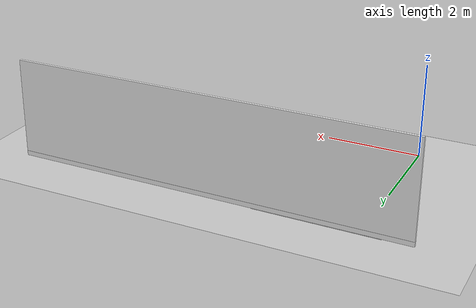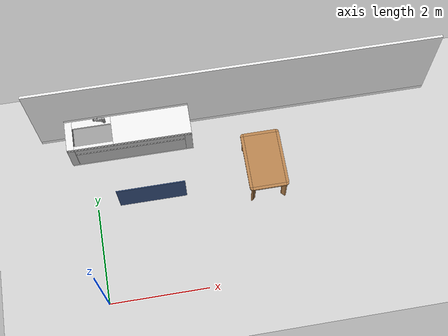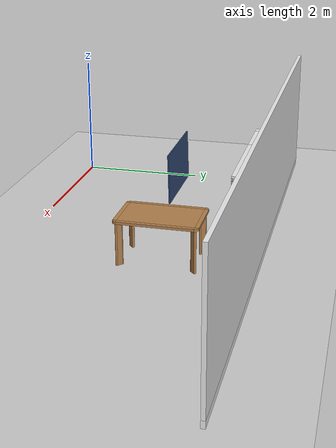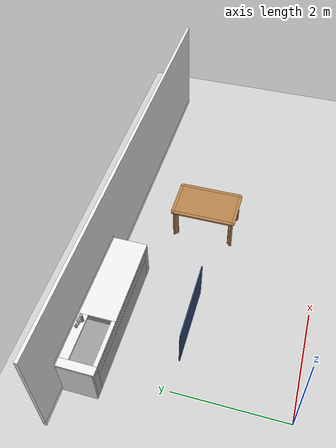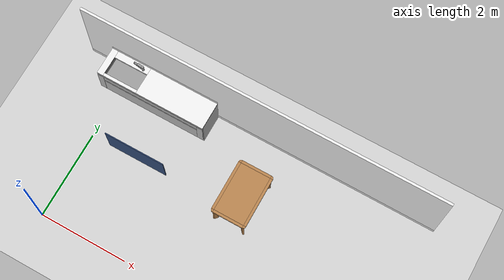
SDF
<sdf version="1.6">
 <world name="default">
  <model name="ground_plane">
   <static>1</static>
   <link name="link">
    <collision name="collision">
     <geometry><plane><normal>0 0 1</normal><size>100 100</size></plane></geometry>
     <surface><friction><ode><mu>100</mu><mu2>50</mu2></ode></friction></surface>
    </collision>
    <visual name="visual">
     <cast_shadows>0</cast_shadows>
     <geometry><plane><normal>0 0 1</normal><size>100 100</size></plane></geometry>
     <material>
      <script><uri>file://media/materials/scripts/gazebo.material</uri><name>Gazebo/Grey</name></script>
     </material>
    </visual>
   </link>
  </model>
  <model name="full_wall_55_8295_2090_0">
   <link name="link">
    <inertial>
     <mass>50</mass>
     <inertia><ixx>1</ixx><ixy>0</ixy><ixz>0</ixz><iyy>1</iyy><iyz>0</iyz><izz>1</izz></inertia>
    </inertial>
    <visual name="bottom_frame">
     <pose>0 0 0.05 0 -0 0</pose>
     <geometry><box><size>0.055 8.295 0.1</size></box></geometry>
     <material>
      <script><uri>model://base_materials/color/scripts</uri><name>hsr_color/white</name></script>
     </material>
    </visual>
    <collision name="collision_bottom_frame">
     <pose>0 0 0.05 0 -0 0</pose>
     <geometry><box><size>0.055 8.295 0.1</size></box></geometry>
    </collision>
    <visual name="wall">
     <pose>0 0 1.095 0 -0 0</pose>
     <geometry><box><size>0.055 8.295 1.99</size></box></geometry>
     <material>
      <script>
       <uri>model://base_materials/wall/scripts</uri>
       <uri>model://base_materials/wall/textures</uri>
       <name>wall/white_noise</name>
      </script>
     </material>
    </visual>
    <collision name="collision_wall">
     <pose>0 0 1.095 0 -0 0</pose>
     <geometry><box><size>0.055 8.295 1.99</size></box></geometry>
    </collision>
    <velocity_decay><linear>0</linear><angular>0</angular></velocity_decay>
   </link>
   <static>1</static>
   <pose>3.12113 3.69468 0.03334 0 0 -1.57394</pose>
  </model>
  <model name="kitchen_table_0">
   <link name="link">
    <inertial>
     <mass>10</mass>
     <inertia><ixx>1</ixx><ixy>0</ixy><ixz>0</ixz><iyy>1</iyy><iyz>0</iyz><izz>1</izz></inertia>
    </inertial>
    <visual name="center_board">
     <pose>0 0 0.68 0 -0 0</pose>
     <geometry><box><size>0.68 1.13 0.04</size></box></geometry>
     <material>
      <script><uri>model://base_materials/wood/scripts/wood.material</uri><name>base_materials/wood</name></script>
     </material>
    </visual>
    <collision name="collision_center_board">
     <pose>0 0 0.68 0 -0 0</pose>
     <geometry><box><size>0.68 1.13 0.04</size></box></geometry>
    </collision>
    <visual name="front_board">
     <pose>0.37 0 0.68 0 -0 0</pose>
     <geometry><box><size>0.06 1.13 0.04</size></box></geometry>
     <material>
      <script><uri>model://base_materials/wood/scripts/wood.material</uri><name>base_materials/wood</name></script>
     </material>
    </visual>
    <collision name="collision_front_board">
     <pose>0.37 0 0.68 0 -0 0</pose>
     <geometry><box><size>0.06 1.13 0.04</size></box></geometry>
    </collision>
    <visual name="back_board">
     <pose>-0.37 0 0.68 0 -0 0</pose>
     <geometry><box><size>0.06 1.13 0.04</size></box></geometry>
     <material>
      <script><uri>model://base_materials/wood/scripts/wood.material</uri><name>base_materials/wood</name></script>
     </material>
    </visual>
    <collision name="collision_back_board">
     <pose>-0.37 0 0.68 0 -0 0</pose>
     <geometry><box><size>0.06 1.13 0.04</size></box></geometry>
    </collision>
    <visual name="right_board">
     <pose>0 0.595 0.68 0 -0 0</pose>
     <geometry><box><size>0.68 0.06 0.04</size></box></geometry>
     <material>
      <script><uri>model://base_materials/wood/scripts/wood.material</uri><name>base_materials/wood</name></script>
     </material>
    </visual>
    <collision name="collision_right_board">
     <pose>0 0.595 0.68 0 -0 0</pose>
     <geometry><box><size>0.68 0.06 0.04</size></box></geometry>
    </collision>
    <visual name="left_board">
     <pose>0 -0.595 0.68 0 -0 0</pose>
     <geometry><box><size>0.68 0.06 0.04</size></box></geometry>
     <material>
      <script><uri>model://base_materials/wood/scripts/wood.material</uri><name>base_materials/wood</name></script>
     </material>
    </visual>
    <collision name="collision_left_board">
     <pose>0 -0.595 0.68 0 -0 0</pose>
     <geometry><box><size>0.68 0.06 0.04</size></box></geometry>
    </collision>
    <visual name="front_right_corner_board">
     <pose>0.34 0.565 0.68 0 -0 0</pose>
     <geometry><cylinder><radius>0.06</radius><length>0.039</length></cylinder></geometry>
     <material>
      <script><uri>model://base_materials/wood/scripts/wood.material</uri><name>base_materials/wood</name></script>
     </material>
    </visual>
    <collision name="collision_front_right_corner_board">
     <pose>0.34 0.565 0.68 0 -0 0</pose>
     <geometry><cylinder><radius>0.06</radius><length>0.039</length></cylinder></geometry>
    </collision>
    <visual name="front_left_corner_board">
     <pose>0.34 -0.565 0.68 0 -0 0</pose>
     <geometry><cylinder><radius>0.06</radius><length>0.039</length></cylinder></geometry>
     <material>
      <script><uri>model://base_materials/wood/scripts/wood.material</uri><name>base_materials/wood</name></script>
     </material>
    </visual>
    <collision name="collision_front_left_corner_board">
     <pose>0.34 -0.565 0.68 0 -0 0</pose>
     <geometry><cylinder><radius>0.06</radius><length>0.039</length></cylinder></geometry>
    </collision>
    <visual name="front_back_right_corner_board">
     <pose>-0.34 0.565 0.68 0 -0 0</pose>
     <geometry><cylinder><radius>0.06</radius><length>0.039</length></cylinder></geometry>
     <material>
      <script><uri>model://base_materials/wood/scripts/wood.material</uri><name>base_materials/wood</name></script>
     </material>
    </visual>
    <collision name="collision_back_right_corner_board">
     <pose>-0.34 0.565 0.68 0 -0 0</pose>
     <geometry><cylinder><radius>0.06</radius><length>0.039</length></cylinder></geometry>
    </collision>
    <visual name="front_back_left_corner_board">
     <pose>-0.34 -0.565 0.68 0 -0 0</pose>
     <geometry><cylinder><radius>0.06</radius><length>0.039</length></cylinder></geometry>
     <material>
      <script><uri>model://base_materials/wood/scripts/wood.material</uri><name>base_materials/wood</name></script>
     </material>
    </visual>
    <collision name="collision_back_left_corner_board">
     <pose>-0.34 -0.565 0.68 0 -0 0</pose>
     <geometry><cylinder><radius>0.06</radius><length>0.039</length></cylinder></geometry>
    </collision>
    <visual name="front_left_corner_frame1">
     <pose>0.345858 -0.57086 0.33 0 -0 0</pose>
     <geometry><cylinder><radius>0.02</radius><length>0.66</length></cylinder></geometry>
     <material>
      <script><uri>model://base_materials/wood/scripts/wood.material</uri><name>base_materials/wood</name></script>
     </material>
    </visual>
    <collision name="collision_front_left_corner_frame1">
     <pose>0.345858 -0.57086 0.33 0 -0 0</pose>
     <geometry><cylinder><radius>0.02</radius><length>0.66</length></cylinder></geometry>
    </collision>
    <visual name="front_left_corner_frame2">
     <pose>0.317574 -0.54257 0.33 0 -0 0.7854</pose>
     <geometry><box><size>0.04 0.08 0.66</size></box></geometry>
     <material>
      <script><uri>model://base_materials/wood/scripts/wood.material</uri><name>base_materials/wood</name></script>
     </material>
    </visual>
    <collision name="collision_front_left_corner_frame2">
     <pose>0.317574 -0.54257 0.33 0 -0 0.7854</pose>
     <geometry><box><size>0.04 0.08 0.66</size></box></geometry>
    </collision>
    <visual name="front_left_corner_frame3">
     <pose>0.289289 -0.51429 0.33 0 -0 0</pose>
     <geometry><cylinder><radius>0.02</radius><length>0.66</length></cylinder></geometry>
     <material>
      <script><uri>model://base_materials/wood/scripts/wood.material</uri><name>base_materials/wood</name></script>
     </material>
    </visual>
    <collision name="collision_front_left_corner_frame3">
     <pose>0.289289 -0.51429 0.33 0 -0 0</pose>
     <geometry><cylinder><radius>0.02</radius><length>0.66</length></cylinder></geometry>
    </collision>
    <visual name="front_right_corner_frame1">
     <pose>0.345858 0.57086 0.33 0 -0 0</pose>
     <geometry><cylinder><radius>0.02</radius><length>0.66</length></cylinder></geometry>
     <material>
      <script><uri>model://base_materials/wood/scripts/wood.material</uri><name>base_materials/wood</name></script>
     </material>
    </visual>
    <collision name="collision_front_right_corner_frame1">
     <pose>0.345858 0.57086 0.33 0 -0 0</pose>
     <geometry><cylinder><radius>0.02</radius><length>0.66</length></cylinder></geometry>
    </collision>
    <visual name="front_right_corner_frame2">
     <pose>0.317574 0.54257 0.33 0 0 -0.7854</pose>
     <geometry><box><size>0.04 0.08 0.66</size></box></geometry>
     <material>
      <script><uri>model://base_materials/wood/scripts/wood.material</uri><name>base_materials/wood</name></script>
     </material>
    </visual>
    <collision name="collision_front_right_corner_frame2">
     <pose>0.317574 0.54257 0.33 0 0 -0.7854</pose>
     <geometry><box><size>0.04 0.08 0.66</size></box></geometry>
    </collision>
    <visual name="front_right_corner_frame3">
     <pose>0.289289 0.51429 0.33 0 -0 0</pose>
     <geometry><cylinder><radius>0.02</radius><length>0.66</length></cylinder></geometry>
     <material>
      <script><uri>model://base_materials/wood/scripts/wood.material</uri><name>base_materials/wood</name></script>
     </material>
    </visual>
    <collision name="collision_front_right_corner_frame3">
     <pose>0.289289 0.51429 0.33 0 -0 0</pose>
     <geometry><cylinder><radius>0.02</radius><length>0.66</length></cylinder></geometry>
    </collision>
    <visual name="back_left_corner_frame1">
     <pose>-0.345858 -0.57086 0.33 0 -0 0</pose>
     <geometry><cylinder><radius>0.02</radius><length>0.66</length></cylinder></geometry>
     <material>
      <script><uri>model://base_materials/wood/scripts/wood.material</uri><name>base_materials/wood</name></script>
     </material>
    </visual>
    <collision name="collision_back_left_corner_frame1">
     <pose>-0.345858 -0.57086 0.33 0 -0 0</pose>
     <geometry><cylinder><radius>0.02</radius><length>0.66</length></cylinder></geometry>
    </collision>
    <visual name="back_left_corner_frame2">
     <pose>-0.317574 -0.54257 0.33 0 0 -0.7854</pose>
     <geometry><box><size>0.04 0.08 0.66</size></box></geometry>
     <material>
      <script><uri>model://base_materials/wood/scripts/wood.material</uri><name>base_materials/wood</name></script>
     </material>
    </visual>
    <collision name="collision_back_left_corner_frame2">
     <pose>-0.317574 -0.54257 0.33 0 0 -0.7854</pose>
     <geometry><box><size>0.04 0.08 0.66</size></box></geometry>
    </collision>
    <visual name="back_left_corner_frame3">
     <pose>-0.289289 -0.51429 0.33 0 -0 0</pose>
     <geometry><cylinder><radius>0.02</radius><length>0.66</length></cylinder></geometry>
     <material>
      <script><uri>model://base_materials/wood/scripts/wood.material</uri><name>base_materials/wood</name></script>
     </material>
    </visual>
    <collision name="collision_back_left_corner_frame3">
     <pose>-0.289289 -0.51429 0.33 0 -0 0</pose>
     <geometry><cylinder><radius>0.02</radius><length>0.66</length></cylinder></geometry>
    </collision>
    <visual name="back_right_corner_frame1">
     <pose>-0.345858 0.57086 0.33 0 -0 0</pose>
     <geometry><cylinder><radius>0.02</radius><length>0.66</length></cylinder></geometry>
     <material>
      <script><uri>model://base_materials/wood/scripts/wood.material</uri><name>base_materials/wood</name></script>
     </material>
    </visual>
    <collision name="collision_back_right_corner_frame1">
     <pose>-0.345858 0.57086 0.33 0 -0 0</pose>
     <geometry><cylinder><radius>0.02</radius><length>0.66</length></cylinder></geometry>
    </collision>
    <visual name="back_right_corner_frame2">
     <pose>-0.317574 0.54257 0.33 0 -0 0.7854</pose>
     <geometry><box><size>0.04 0.08 0.66</size></box></geometry>
     <material>
      <script><uri>model://base_materials/wood/scripts/wood.material</uri><name>base_materials/wood</name></script>
     </material>
    </visual>
    <collision name="collision_back_right_corner_frame2">
     <pose>-0.317574 0.54257 0.33 0 -0 0.7854</pose>
     <geometry><box><size>0.04 0.08 0.66</size></box></geometry>
    </collision>
    <visual name="back_right_corner_frame3">
     <pose>-0.289289 0.51429 0.33 0 -0 0</pose>
     <geometry><cylinder><radius>0.02</radius><length>0.66</length></cylinder></geometry>
     <material>
      <script><uri>model://base_materials/wood/scripts/wood.material</uri><name>base_materials/wood</name></script>
     </material>
    </visual>
    <collision name="collision_back_right_corner_frame3">
     <pose>-0.289289 0.51429 0.33 0 -0 0</pose>
     <geometry><cylinder><radius>0.02</radius><length>0.66</length></cylinder></geometry>
    </collision>
    <velocity_decay><linear>0</linear><angular>0</angular></velocity_decay>
   </link>
   <static>1</static>
   <pose>3.50199 2.26966 0 0 -0 0</pose>
  </model>
  <model name="sink_0">
   <link name="link">
    <inertial>
     <mass>10</mass>
     <inertia><ixx>1</ixx><ixy>0</ixy><ixz>0</ixz><iyy>1</iyy><iyz>0</iyz><izz>1</izz></inertia>
    </inertial>
    <visual name="faucet1">
     <pose>-0.52 0.82 0.94 0 -0 0</pose>
     <geometry><cylinder><radius>0.027</radius><length>0.18</length></cylinder></geometry>
     <material>
      <script><uri>model://base_materials/color/scripts</uri><name>hsr_color/grey</name></script>
     </material>
    </visual>
    <collision name="collision_faucet1">
     <pose>-0.52 0.82 0.94 0 -0 0</pose>
     <geometry><cylinder><radius>0.027</radius><length>0.18</length></cylinder></geometry>
    </collision>
    <visual name="faucet2">
     <pose>-0.52 0.72 0.97 1.047 -0 0</pose>
     <geometry><cylinder><radius>0.024</radius><length>0.24</length></cylinder></geometry>
     <material>
      <script><uri>model://base_materials/color/scripts</uri><name>hsr_color/grey</name></script>
     </material>
    </visual>
    <collision name="collision_faucet2">
     <pose>-0.52 0.72 0.97 1.047 -0 0</pose>
     <geometry><cylinder><radius>0.024</radius><length>0.24</length></cylinder></geometry>
    </collision>
    <visual name="faucet3">
     <pose>-0.52 0.63 1 0 -0 0</pose>
     <geometry><cylinder><radius>0.015</radius><length>0.04</length></cylinder></geometry>
     <material>
      <script><uri>model://base_materials/color/scripts</uri><name>hsr_color/grey</name></script>
     </material>
    </visual>
    <collision name="collision_faucet3">
     <pose>-0.52 0.63 1 0 -0 0</pose>
     <geometry><cylinder><radius>0.015</radius><length>0.04</length></cylinder></geometry>
    </collision>
    <visual name="faucet_handle">
     <pose>-0.52 0.75 1.03 1.309 -0 0</pose>
     <geometry><box><size>0.048 0.01 0.11</size></box></geometry>
     <material>
      <script><uri>model://base_materials/color/scripts</uri><name>hsr_color/grey</name></script>
     </material>
    </visual>
    <collision name="collision_faucet_handle">
     <pose>-0.52 0.75 1.03 1.309 -0 0</pose>
     <geometry><box><size>0.048 0.01 0.11</size></box></geometry>
    </collision>
    <visual name="back_bucket">
     <pose>-0.57 0.545 0.74 0 -0 0</pose>
     <geometry><box><size>0.02 0.8 0.18</size></box></geometry>
     <material>
      <script><uri>model://base_materials/color/scripts</uri><name>hsr_color/grey</name></script>
     </material>
    </visual>
    <collision name="collision_back_bucket">
     <pose>-0.57 0.545 0.74 0 -0 0</pose>
     <geometry><box><size>0.02 0.8 0.18</size></box></geometry>
    </collision>
    <visual name="front_bucket">
     <pose>-0.06 0.545 0.74 0 -0 0</pose>
     <geometry><box><size>0.02 0.8 0.18</size></box></geometry>
     <material>
      <script><uri>model://base_materials/color/scripts</uri><name>hsr_color/grey</name></script>
     </material>
    </visual>
    <collision name="collision_fromt_bucket">
     <pose>-0.06 0.545 0.74 0 -0 0</pose>
     <geometry><box><size>0.02 0.8 0.18</size></box></geometry>
    </collision>
    <visual name="left_bucket">
     <pose>-0.32 0.14 0.74 0 -0 0</pose>
     <geometry><box><size>0.5 0.02 0.18</size></box></geometry>
     <material>
      <script><uri>model://base_materials/color/scripts</uri><name>hsr_color/grey</name></script>
     </material>
    </visual>
    <collision name="collision_left_bucket">
     <pose>-0.32 0.14 0.74 0 -0 0</pose>
     <geometry><box><size>0.5 0.02 0.18</size></box></geometry>
    </collision>
    <visual name="right_bucket">
     <pose>-0.32 0.96 0.74 0 -0 0</pose>
     <geometry><box><size>0.5 0.02 0.18</size></box></geometry>
     <material>
      <script><uri>model://base_materials/color/scripts</uri><name>hsr_color/grey</name></script>
     </material>
    </visual>
    <collision name="collision_right_bucket">
     <pose>-0.32 0.96 0.74 0 -0 0</pose>
     <geometry><box><size>0.5 0.02 0.18</size></box></geometry>
    </collision>
    <visual name="bottom_bucket">
     <pose>-0.33 0.555 0.695 0 -0 0</pose>
     <geometry><box><size>0.52 0.82 0.02</size></box></geometry>
     <material>
      <script><uri>model://base_materials/color/scripts</uri><name>hsr_color/grey</name></script>
     </material>
    </visual>
    <collision name="collision_bottom_bucket">
     <pose>-0.33 0.555 0.695 0 -0 0</pose>
     <geometry><box><size>0.52 0.82 0.02</size></box></geometry>
    </collision>
    <visual name="front_board">
     <pose>-0.04 1.275 0.425 0 -0 0</pose>
     <geometry><box><size>0.02 2.549 0.85</size></box></geometry>
     <material>
      <script><uri>model://base_materials/color/scripts</uri><name>hsr_color/white</name></script>
     </material>
    </visual>
    <collision name="collision_front_board">
     <pose>-0.04 1.275 0.425 0 -0 0</pose>
     <geometry><box><size>0.02 2.549 0.85</size></box></geometry>
    </collision>
    <visual name="back_board1">
     <pose>-0.625 1.275 0.425 0 -0 0</pose>
     <geometry><box><size>0.05 2.549 0.85</size></box></geometry>
     <material>
      <script><uri>model://base_materials/color/scripts</uri><name>hsr_color/white</name></script>
     </material>
    </visual>
    <collision name="collision_back_board1">
     <pose>-0.625 1.275 0.425 0 -0 0</pose>
     <geometry><box><size>0.05 2.549 0.85</size></box></geometry>
    </collision>
    <visual name="left_board">
     <pose>-0.34 0.025 0.425 0 -0 0</pose>
     <geometry><box><size>0.62 0.05 0.85</size></box></geometry>
     <material>
      <script><uri>model://base_materials/color/scripts</uri><name>hsr_color/white</name></script>
     </material>
    </visual>
    <collision name="collision_left_board">
     <pose>-0.34 0.025 0.425 0 -0 0</pose>
     <geometry><box><size>0.62 0.05 0.85</size></box></geometry>
    </collision>
    <visual name="right_board">
     <pose>-0.34 2.525 0.425 0 -0 0</pose>
     <geometry><box><size>0.62 0.05 0.85</size></box></geometry>
     <material>
      <script><uri>model://base_materials/color/scripts</uri><name>hsr_color/white</name></script>
     </material>
    </visual>
    <collision name="collision_right_board">
     <pose>-0.34 2.525 0.425 0 -0 0</pose>
     <geometry><box><size>0.62 0.05 0.85</size></box></geometry>
    </collision>
    <visual name="top_left_board">
     <pose>-0.325 0.0725 0.835 0 -0 0</pose>
     <geometry><box><size>0.65 0.146 0.04</size></box></geometry>
     <material>
      <script><uri>model://base_materials/color/scripts</uri><name>hsr_color/white</name></script>
     </material>
    </visual>
    <collision name="collision_top_left_board">
     <pose>-0.325 0.0725 0.835 0 -0 0</pose>
     <geometry><box><size>0.65 0.146 0.04</size></box></geometry>
    </collision>
    <visual name="top_right_board">
     <pose>-0.325 1.7475 0.835 0 -0 0</pose>
     <geometry><box><size>0.65 1.606 0.04</size></box></geometry>
     <material>
      <script><uri>model://base_materials/color/scripts</uri><name>hsr_color/white</name></script>
     </material>
    </visual>
    <collision name="collision_top_right_board">
     <pose>-0.325 1.7475 0.835 0 -0 0</pose>
     <geometry><box><size>0.65 1.606 0.04</size></box></geometry>
    </collision>
    <visual name="top_front_board">
     <pose>-0.035 0.545 0.835 0 -0 0</pose>
     <geometry><box><size>0.07 0.8 0.04</size></box></geometry>
     <material>
      <script><uri>model://base_materials/color/scripts</uri><name>hsr_color/white</name></script>
     </material>
    </visual>
    <collision name="collision_top_front_board">
     <pose>-0.035 0.545 0.835 0 -0 0</pose>
     <geometry><box><size>0.07 0.8 0.04</size></box></geometry>
    </collision>
    <visual name="top_back_board">
     <pose>-0.56 0.545 0.835 0 -0 0</pose>
     <geometry><box><size>0.18 0.8 0.04</size></box></geometry>
     <material>
      <script><uri>model://base_materials/color/scripts</uri><name>hsr_color/white</name></script>
     </material>
    </visual>
    <collision name="collision_top_back_board">
     <pose>-0.56 0.545 0.835 0 -0 0</pose>
     <geometry><box><size>0.18 0.8 0.04</size></box></geometry>
    </collision>
    <visual name="back_board2">
     <pose>-0.64 1.275 0.895 0 -0 0</pose>
     <geometry><box><size>0.02 2.55 0.08</size></box></geometry>
     <material>
      <script><uri>model://base_materials/color/scripts</uri><name>hsr_color/white</name></script>
     </material>
    </visual>
    <collision name="collision_back_board2">
     <pose>-0.64 1.275 0.895 0 -0 0</pose>
     <geometry><box><size>0.02 2.55 0.08</size></box></geometry>
    </collision>
    <visual name="handle1_1">
     <pose>-0.015 1.275 0.81 0 -0 0</pose>
     <geometry><box><size>0.03 2.55 0.005</size></box></geometry>
     <material>
      <script><uri>model://base_materials/color/scripts</uri><name>hsr_color/grey</name></script>
     </material>
    </visual>
    <collision name="collision_handle1_1">
     <pose>-0.015 1.275 0.81 0 -0 0</pose>
     <geometry><box><size>0.03 2.55 0.005</size></box></geometry>
    </collision>
    <visual name="handle1_2">
     <pose>-0.029 1.275 0.7925 0 -0 0</pose>
     <geometry><box><size>0.005 2.55 0.04</size></box></geometry>
     <material>
      <script><uri>model://base_materials/color/scripts</uri><name>hsr_color/grey</name></script>
     </material>
    </visual>
    <collision name="collision_handle1_2">
     <pose>-0.029 1.275 0.7925 0 -0 0</pose>
     <geometry><box><size>0.005 2.55 0.04</size></box></geometry>
    </collision>
    <visual name="handle1_3">
     <pose>-0.015 1.275 0.77 0 -0 0</pose>
     <geometry><box><size>0.03 2.55 0.005</size></box></geometry>
     <material>
      <script><uri>model://base_materials/color/scripts</uri><name>hsr_color/grey</name></script>
     </material>
    </visual>
    <collision name="collision_handle1_3">
     <pose>-0.015 1.275 0.77 0 -0 0</pose>
     <geometry><box><size>0.03 2.55 0.005</size></box></geometry>
    </collision>
    <visual name="front_left_drawer">
     <pose>-0.015 0.0725 0.44 0 -0 0</pose>
     <geometry><box><size>0.03 0.145 0.66</size></box></geometry>
     <material>
      <script><uri>model://sink/scripts</uri><uri>model://sink/textures</uri><name>sink/001</name></script>
     </material>
    </visual>
    <collision name="collision_left_drawer">
     <pose>-0.015 0.0725 0.44 0 -0 0</pose>
     <geometry><box><size>0.03 0.145 0.66</size></box></geometry>
    </collision>
    <visual name="front_right_drawer">
     <pose>-0.015 2.4725 0.44 0 -0 0</pose>
     <geometry><box><size>0.03 0.145 0.66</size></box></geometry>
     <material>
      <script><uri>model://sink/scripts</uri><uri>model://sink/textures</uri><name>sink/001</name></script>
     </material>
    </visual>
    <collision name="collision_right_drawer">
     <pose>-0.015 2.4725 0.44 0 -0 0</pose>
     <geometry><box><size>0.03 0.145 0.66</size></box></geometry>
    </collision>
    <visual name="front_top_drawer">
     <pose>-0.015 1.275 0.6975 0 -0 0</pose>
     <geometry><box><size>0.03 2.25 0.145</size></box></geometry>
     <material>
      <script><uri>model://sink/scripts</uri><uri>model://sink/textures</uri><name>sink/001</name></script>
     </material>
    </visual>
    <collision name="collision_top_drawer">
     <pose>-0.015 1.275 0.6975 0 -0 0</pose>
     <geometry><box><size>0.03 2.25 0.145</size></box></geometry>
    </collision>
    <visual name="handle2_1">
     <pose>-0.015 1.275 0.62 0 -0 0</pose>
     <geometry><box><size>0.03 2.25 0.005</size></box></geometry>
     <material>
      <script><uri>model://base_materials/color/scripts</uri><name>hsr_color/grey</name></script>
     </material>
    </visual>
    <collision name="collision_handle2_1">
     <pose>-0.015 1.275 0.62 0 -0 0</pose>
     <geometry><box><size>0.03 2.25 0.005</size></box></geometry>
    </collision>
    <visual name="handle2_2">
     <pose>-0.029 1.275 0.6025 0 -0 0</pose>
     <geometry><box><size>0.005 2.25 0.04</size></box></geometry>
     <material>
      <script><uri>model://base_materials/color/scripts</uri><name>hsr_color/grey</name></script>
     </material>
    </visual>
    <collision name="collision_handle2_2">
     <pose>-0.029 1.275 0.6025 0 -0 0</pose>
     <geometry><box><size>0.005 2.25 0.04</size></box></geometry>
    </collision>
    <visual name="handle2_3">
     <pose>-0.015 1.275 0.58 0 -0 0</pose>
     <geometry><box><size>0.03 2.25 0.005</size></box></geometry>
     <material>
      <script><uri>model://base_materials/color/scripts</uri><name>hsr_color/grey</name></script>
     </material>
    </visual>
    <collision name="collision_handle2_3">
     <pose>-0.015 1.275 0.58 0 -0 0</pose>
     <geometry><box><size>0.03 2.25 0.005</size></box></geometry>
    </collision>
    <visual name="front_bottom_drawer">
     <pose>-0.015 1.275 0.345 0 -0 0</pose>
     <geometry><box><size>0.03 2.25 0.47</size></box></geometry>
     <material>
      <script><uri>model://sink/scripts</uri><uri>model://sink/textures</uri><name>sink/001</name></script>
     </material>
    </visual>
    <collision name="collision_bottom_drawer">
     <pose>-0.015 1.275 0.345 0 -0 0</pose>
     <geometry><box><size>0.03 2.25 0.47</size></box></geometry>
    </collision>
    <velocity_decay><linear>0</linear><angular>0</angular></velocity_decay>
   </link>
   <static>1</static>
   <pose>-0.417899 3.04624 0 0 0 -1.57478</pose>
  </model>
  <model name="under_table_clone">
   <link name="link">
    <inertial>
     <mass>126.599</mass>
     <inertia><ixx>27.0911</ixx><ixy>0</ixy><ixz>0</ixz><iyy>19.7939</iyy><iyz>0</iyz><izz>7.30572</izz></inertia>
    </inertial>
    <velocity_decay><linear>0</linear><angular>0</angular></velocity_decay>
    <visual name="wall">
     <pose>0 0 0.45 0 -0 0</pose>
     <geometry><box><size>0.02 0.831919 1.3696</size></box></geometry>
     <material>
      <ambient>0.392 0.584 0.929 1</ambient>
      <diffuse>0.196 0.292 0.4645 1</diffuse>
      <specular>0 0 0 1</specular>
      <script><name>ModelPreview_1::link::wall_MATERIAL_</name><uri>__default__</uri></script>
     </material>
    </visual>
    <collision name="collision_wall">
     <pose>0 0 0.45 0 -0 0</pose>
     <geometry><box><size>0.02 0.831919 1.3696</size></box></geometry>
     <surface>
      <friction>
       <ode><mu>1</mu><mu2>1</mu2><fdir1>0 0 0</fdir1><slip1>0</slip1><slip2>0</slip2></ode>
       <torsional>
        <coefficient>1</coefficient>
        <patch_radius>0</patch_radius>
        <surface_radius>0</surface_radius>
        <use_patch_radius>1</use_patch_radius>
        <ode><slip>0</slip></ode>
       </torsional>
      </friction>
      <bounce><restitution_coefficient>0</restitution_coefficient><threshold>1e+06</threshold></bounce>
      <contact>
       <collide_without_contact>0</collide_without_contact>
       <collide_without_contact_bitmask>1</collide_without_contact_bitmask>
       <collide_bitmask>1</collide_bitmask>
       <ode>
        <soft_cfm>0</soft_cfm>
        <soft_erp>0.2</soft_erp>
        <kp>1e+13</kp>
        <kd>1</kd>
        <max_vel>0.01</max_vel>
        <min_depth>0</min_depth>
       </ode>
       <bullet>
        <split_impulse>1</split_impulse>
        <split_impulse_penetration_threshold>-0.01</split_impulse_penetration_threshold>
        <soft_cfm>0</soft_cfm>
        <soft_erp>0.2</soft_erp>
        <kp>1e+13</kp>
        <kd>1</kd>
       </bullet>
      </contact>
     </surface>
    </collision>
   </link>
   <static>1</static>
   <pose>1.60953 1.96069 0.586255 1.5687 0.027674 -1.57156</pose>
  </model>
 </world>
</sdf>
